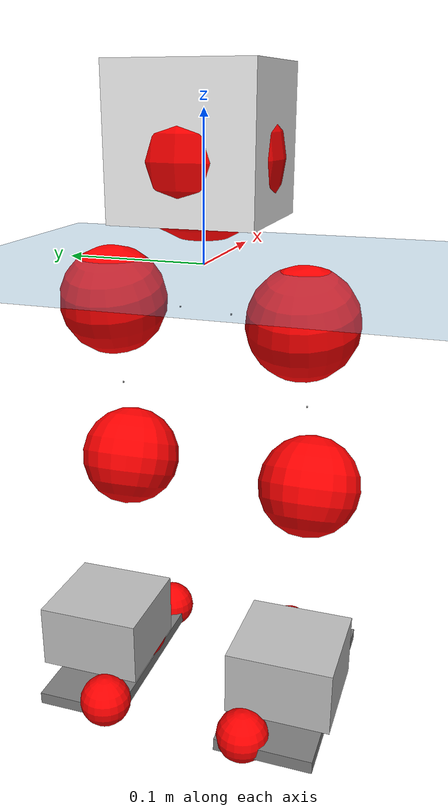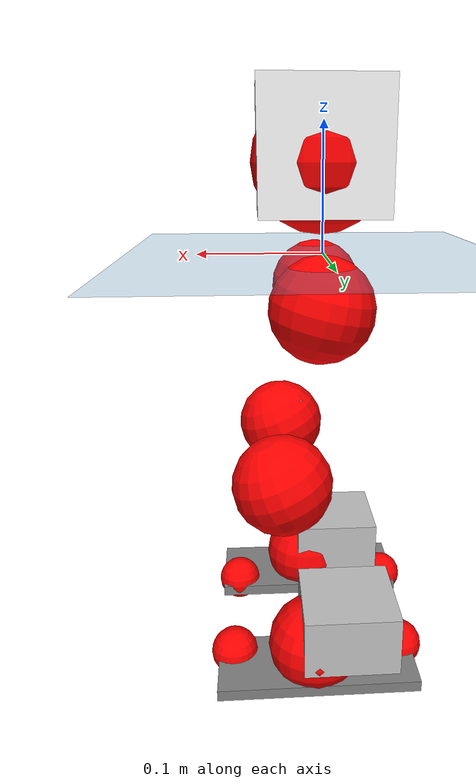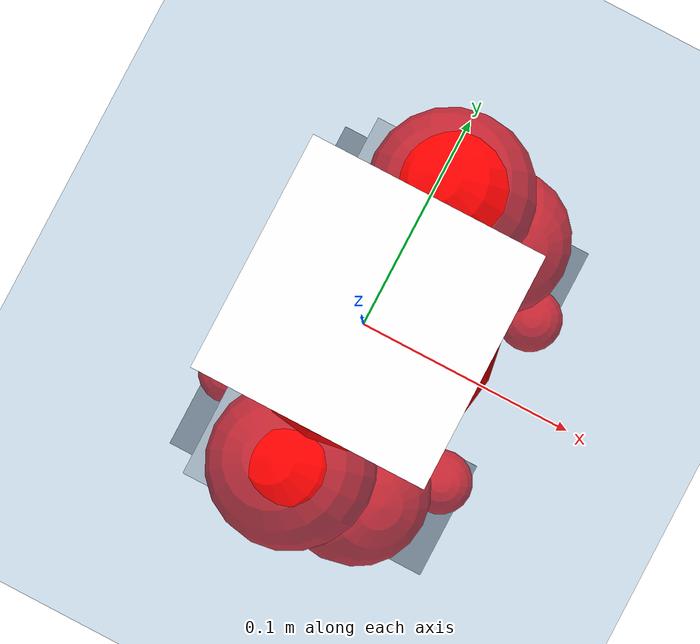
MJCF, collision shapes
<mujoco model="pi_12dof_release_v1">
  <compiler angle="radian" assetdir="assets" balanceinertia="true" inertiafromgeom="false"/>

  <option timestep="0.005" density="1.2" viscosity="2e-05"/>

  <size nkey="1"/>

  <visual>
    <quality shadowsize="8192"/>
    <map shadowclip="0.5"/>
  </visual>

  <default>
    <default class="/">
      <joint armature="0.01" damping="0.01" frictionloss="0.01"/>
      <geom contype="0" conaffinity="0" group="1" solref="-1000 -80"/>
      <site size="0.01 0.005 0.005" group="5"/>
      <general forcelimited="true" biastype="affine" gainprm="20" biasprm="0 -20 -0.5"/>
      <default class="foot">
        <geom size="0.0845 0.036 0.005" type="box" condim="6" group="4" priority="1" friction="0.9 0.2 0.2" solimp="0.015 1 0.005"/>
      </default>
      <default class="reward_collision_sphere">
        <geom group="5" rgba="1 0 0 1"/>
      </default>
    </default>
  </default>

  <asset>
    <texture type="skybox" colorspace="auto" name="//unnamed_texture_0" builtin="gradient" rgb1="0.95 0.95 0.95" rgb2="0.95 0.95 0.95" width="100" height="600"/>
    <texture type="2d" colorspace="auto" name="texplane" builtin="checker" rgb1="0.345 0.575 0.748" rgb2="0.345 0.575 0.748" markrgb="1 1 1" width="512" height="512"/>
    <material name="MatPlane" class="/" texture="texplane" texuniform="true" texrepeat="2 2" specular="0.9"/>
    <mesh name="baselink_1" class="/" file="baselink_1.STL"/>
    <mesh name="r_hip_pitch_link" class="/" file="r_hip_pitch_link.STL"/>
    <mesh name="r_hip_roll_link" class="/" file="r_hip_roll_link.STL"/>
    <mesh name="r_thigh_link" class="/" file="r_thigh_link.STL"/>
    <mesh name="r_calf_link" class="/" file="r_calf_link.STL"/>
    <mesh name="r_ankle_pitch_link" class="/" file="r_ankle_pitch_link.STL"/>
    <mesh name="r_ankle_roll_link" class="/" file="r_ankle_roll_link.STL"/>
    <mesh name="l_hip_pitch_link" class="/" file="l_hip_pitch_link.STL"/>
    <mesh name="l_hip_roll_link" class="/" file="l_hip_roll_link.STL"/>
    <mesh name="l_thigh_link" class="/" file="l_thigh_link.STL"/>
    <mesh name="l_calf_link" class="/" file="l_calf_link.STL"/>
    <mesh name="l_ankle_pitch_link" class="/" file="l_ankle_pitch_link.STL"/>
    <mesh name="l_ankle_roll_link" class="/" file="l_ankle_roll_link.STL"/>
  </asset>

  <worldbody>
    <geom name="floor" class="/" size="100 100 0.125" type="plane" group="0" material="MatPlane"/>
    <light name="toplight_shadow" class="/" pos="0 0 5" dir="0.0990148 0.0990148 -0.990148" type="directional" ambient="0.04 0.04 0.04" diffuse="0.55 0.55 0.55" specular="0.12 0.12 0.12"/>
    <light name="toplight_fill" class="/" pos="0 0 5" dir="0.0990148 0.0990148 -0.990148" type="directional" castshadow="false" ambient="0.04 0.04 0.04" diffuse="0.3 0.3 0.3" specular="0.08 0.08 0.08"/>
    <body name="trunk" pos="0.00259581 0.00109327 0.000659056" quat="1 -9.45555e-05 -8.84679e-05 -0.000153908">
      <inertial pos="0.00218941 1.93113e-05 0.0394295" quat="0.692818 0.0184876 0.00416689 0.720864" mass="2.06064" diaginertia="0.013537 0.00604192 0.0037359"/>
      <joint name="//unnamed_joint_0" type="free"/>
      <geom name="//unnamed_geom_1" class="/" type="mesh" density="0" rgba="1 1 1 1" mesh="baselink_1"/>
      <geom name="//unnamed_geom_2" class="/" size="0.0490738 0.0490738 0.0490738" pos="0 0 0.078341" type="box" rgba="1 1 1 1"/>
      <geom name="//unnamed_geom_3" class="reward_collision_sphere" size="0.0539812" pos="0 0 0.0685483"/>
      <site name="imu" class="/" pos="-0.000394474 0.00533058 -0.0106117" size="0.00981477"/>
      <camera name="track" class="/" pos="0 -1.82408 0" quat="0.707107 0.707107 0 0" mode="trackcom"/>
      <camera name="ego_camera" class="/" pos="0.0789847 0 0.176267" quat="-0.5 -0.5 0.5 0.5"/>
      <body name="r_hip_pitch_link" pos="-0.00059301 -0.0200894 -0.0344205" quat="0.99213 0.000188144 -0.125207 0.00120645">
        <inertial pos="-0.00125294 -0.053245 0.000333893" quat="-0.0178675 0.705948 -0.02796 0.707486" mass="0.352452" diaginertia="0.000141798 5.96862e-05 7.57536e-05"/>
        <joint name="r_hip_pitch_joint" class="/" pos="0 0 0" axis="-0.0124855 -0.999922 -0.000375473" stiffness="0.00110019" range="-1.7037 1.30262" armature="0.00981907" damping="0.0223797" frictionloss="0.00991939"/>
        <geom name="//unnamed_geom_4" class="/" type="mesh" density="0" rgba="0.75294 0.75294 0.75294 1" mesh="r_hip_pitch_link"/>
        <geom name="//unnamed_geom_5" class="/" size="0.000490738 0.000490738 0.000490738" type="box" rgba="0.75294 0.75294 0.75294 1"/>
        <body name="r_hip_roll_link" pos="-0.00286029 -0.0514298 -0.00123402" quat="1 0.000848545 -0.000443449 -0.000209594">
          <inertial pos="-0.000953503 -0.000505163 -0.0615757" quat="0.710387 -0.0726777 -0.0823558 0.695188" mass="0.363284" diaginertia="0.000430967 0.000174329 0.000114393"/>
          <joint name="r_hip_roll_joint" class="/" pos="0 0 0" axis="-0.999894 -0.0096063 0.0109509" range="-0.143338 0.550936" armature="0.0103964" damping="0" frictionloss="0.00844031"/>
          <geom name="//unnamed_geom_6" class="/" type="mesh" density="0" rgba="0.75294 0.75294 0.75294 1" mesh="r_hip_roll_link"/>
          <geom name="//unnamed_geom_7" class="/" size="0.000490738 0.000490738 0.000490738" type="box" rgba="0.75294 0.75294 0.75294 1"/>
          <geom name="//unnamed_geom_8" class="reward_collision_sphere" size="0.0392591"/>
          <body name="r_thigh_link" pos="0.000225034 -0.00164355 -0.0668513" quat="0.999999 -0.00116187 0.000343925 -0.000366732">
            <inertial pos="0.00222995 0.000868124 -0.0463406" quat="0.740637 0.671822 -0.00318299 0.0101027" mass="0.113305" diaginertia="0.000161009 6.1742e-05 5.19276e-05"/>
            <joint name="r_thigh_joint" class="/" pos="0 0 0" axis="0.00497578 -0.0143166 -0.999885" range="-0.24642 0.639012" armature="0.00992744" damping="0.000370209" frictionloss="0.00897835"/>
            <geom name="//unnamed_geom_9" class="/" type="mesh" density="0" rgba="0.75294 0.75294 0.75294 1" mesh="r_thigh_link"/>
            <geom name="//unnamed_geom_10" class="/" size="0.000490738 0.000490738 0.000490738" type="box" rgba="0.75294 0.75294 0.75294 1"/>
            <body name="r_calf_link" pos="-0.00186701 -0.00119761 -0.0711272" quat="0.947797 0.000141502 0.318875 -2.94064e-05">
              <inertial pos="0.00182651 -0.000337821 -0.0706834" quat="0.999848 -0.002048 0.001389 0.0172548" mass="0.780279" diaginertia="0.00471428 0.00219392 0.000161211"/>
              <joint name="r_calf_joint" class="/" pos="0 0 0" axis="-0.0030054 -0.999988 0.00379767" range="-1.63333 0.645382" armature="0.0107428" damping="0.0107509" frictionloss="0.0103043"/>
              <geom name="//unnamed_geom_11" class="/" type="mesh" density="0" rgba="0.75294 0.75294 0.75294 1" mesh="r_calf_link"/>
              <geom name="//unnamed_geom_12" class="/" size="0.000490738 0.000490738 0.000490738" type="box" rgba="0.75294 0.75294 0.75294 1"/>
              <geom name="//unnamed_geom_13" class="reward_collision_sphere" size="0.0392591"/>
              <body name="r_ankle_pitch_link" pos="-0.000458116 -0.00199991 -0.134942" quat="0.980067 2.9876e-06 -0.198668 -3.1333e-05">
                <inertial pos="0.00298501 0.00472256 -0.000658821" quat="0.00329514 0.706337 -0.00239192 0.707864" mass="0.167152" diaginertia="0.000403183 0.000139093 0.000108589"/>
                <joint name="r_ankle_pitch_joint" class="/" pos="0 0 0" axis="-0.0132561 -0.999885 0.00740591" stiffness="0.00771204" range="-1.27071 0.502802" armature="0.00859948" damping="0.016354" frictionloss="0.0084444"/>
                <geom name="//unnamed_geom_14" class="/" type="mesh" density="0" rgba="0.75294 0.75294 0.75294 1" mesh="r_ankle_pitch_link"/>
                <geom name="//unnamed_geom_15" class="/" size="0.0382776 0.0392591 0.0245369" type="box" rgba="0.75294 0.75294 0.75294 1"/>
                <body name="r_ankle_roll_link" pos="0.0806296 0.0048022 0.00264029" quat="1 -0.000164944 0.000429125 -0.000881529">
                  <inertial pos="-0.0235909 -0.00238017 -0.011506" quat="0.563595 0.429961 0.433165 0.556653" mass="0.479599" diaginertia="0.0015226 0.00068164 0.000264761"/>
                  <joint name="r_ankle_roll_joint" class="/" pos="0 0 0" axis="-0.999958 0.00744321 0.00528988" range="-0.149032 0.172342" armature="0.0096824" damping="0.0181146" frictionloss="0.010319"/>
                  <geom name="//unnamed_geom_16" class="/" type="mesh" density="0" rgba="0.75294 0.75294 0.75294 1" mesh="r_ankle_roll_link"/>
                  <geom name="//unnamed_geom_17" class="/" type="mesh" rgba="0.75294 0.75294 0.75294 1" mesh="r_ankle_roll_link"/>
                  <geom name="right_foot" class="foot" size="0.0846773 0.0366537 0.00485421" pos="-0.0537096 0 -0.0430875"/>
                  <geom name="//unnamed_geom_19" class="reward_collision_sphere" size="0.0392591" pos="-0.0526565 0 -0.0195852"/>
                  <geom name="//unnamed_geom_20" class="reward_collision_sphere" size="0.0196295" pos="0.0157969 0.0182408 -0.0391705"/>
                  <geom name="//unnamed_geom_21" class="reward_collision_sphere" size="0.0196295" pos="-0.126376 0.0182408 -0.0391705"/>
                  <site name="right_foot" class="foot" pos="-0.0537096 0 -0.0430875" size="0.00981477"/>
                </body>
              </body>
            </body>
          </body>
        </body>
      </body>
      <body name="l_hip_pitch_link" pos="0.000921477 0.017807 -0.0320987" quat="0.992176 -0.000149445 -0.124848 -0.0002592">
        <inertial pos="0.00317971 0.0477421 -0.000247979" quat="-0.0294871 0.699699 0.034622 0.712989" mass="0.358881" diaginertia="0.000166114 6.58855e-05 8.73657e-05"/>
        <joint name="l_hip_pitch_joint" class="/" pos="0 0 0" axis="-0.00491249 0.999988 0.000202826" range="-1.2957 1.72989" armature="0.00880104" damping="0.00728866" frictionloss="0.0107376"/>
        <geom name="//unnamed_geom_22" class="/" type="mesh" density="0" rgba="0.75294 0.75294 0.75294 1" mesh="l_hip_pitch_link"/>
        <geom name="//unnamed_geom_23" class="/" size="0.000490738 0.000490738 0.000490738" type="box" rgba="0.75294 0.75294 0.75294 1"/>
        <body name="l_hip_roll_link" pos="0.00324943 0.052686 -0.000374554" quat="1 -0.000460251 0.000497948 0.000109855">
          <inertial pos="-0.000991961 0.00206834 -0.0600709" quat="0.698339 -0.073419 -0.0642149 0.70909" mass="0.377016" diaginertia="0.000431566 0.000180216 0.00011715"/>
          <joint name="l_hip_roll_joint" class="/" pos="0 0 0" axis="-0.999967 0.000486216 -0.00811641" range="-0.478028 0.147522" armature="0.0112928" damping="0" frictionloss="0.00865512"/>
          <geom name="//unnamed_geom_24" class="/" type="mesh" density="0" rgba="0.75294 0.75294 0.75294 1" mesh="l_hip_roll_link"/>
          <geom name="//unnamed_geom_25" class="/" size="0.000490738 0.000490738 0.000490738" type="box" rgba="0.75294 0.75294 0.75294 1"/>
          <geom name="//unnamed_geom_26" class="reward_collision_sphere" size="0.0392591"/>
          <body name="l_thigh_link" pos="-0.00177588 0.00208671 -0.0695752" quat="1 -0.000701473 0.000134205 0.0005435">
            <inertial pos="-0.00070937 -0.00134177 -0.0451074" quat="0.681535 0.731751 0.00640755 -0.00327466" mass="0.103747" diaginertia="0.000162062 5.88033e-05 5.2592e-05"/>
            <joint name="l_thigh_joint" class="/" pos="0 0 0" axis="1.3383e-05 -0.000290208 -1" range="-0.64647 0.322502" armature="0.0101484" damping="0" frictionloss="0.00936382"/>
            <geom name="//unnamed_geom_27" class="/" type="mesh" density="0" rgba="0.75294 0.75294 0.75294 1" mesh="l_thigh_link"/>
            <geom name="//unnamed_geom_28" class="/" size="0.000490738 0.000490738 0.000490738" type="box" rgba="0.75294 0.75294 0.75294 1"/>
            <body name="l_calf_link" pos="-0.00253384 0.00258571 -0.0689777" quat="0.947617 6.7019e-05 0.319409 -0.000229885">
              <inertial pos="0.00325092 0.00479265 -0.0696006" quat="0.999898 -0.000289701 0.00663673 0.0126351" mass="0.780093" diaginertia="0.00474961 0.00230765 0.000164061"/>
              <joint name="l_calf_joint" class="/" pos="0 0 0" axis="-0.0083126 0.999921 -0.00946186" range="-0.59444 1.67464" armature="0.00973548" damping="0.00299302" frictionloss="0.00845597"/>
              <geom name="//unnamed_geom_29" class="/" type="mesh" density="0" rgba="0.75294 0.75294 0.75294 1" mesh="l_calf_link"/>
              <geom name="//unnamed_geom_30" class="/" size="0.000490738 0.000490738 0.000490738" type="box" rgba="0.75294 0.75294 0.75294 1"/>
              <geom name="//unnamed_geom_31" class="reward_collision_sphere" size="0.0392591"/>
              <body name="l_ankle_pitch_link" pos="8.38754e-05 0.00131148 -0.135074" quat="0.980164 -6.22767e-05 -0.198188 0.000104707">
                <inertial pos="0.00533718 -0.000148169 -0.00020065" quat="-0.00301727 0.705708 -0.00601328 0.708471" mass="0.168245" diaginertia="0.000401736 0.000145813 0.000110839"/>
                <joint name="l_ankle_pitch_joint" class="/" pos="0 0 0" axis="0.00230997 0.999991 -0.00350982" range="-0.453476 1.35636" armature="0.009806" damping="0" frictionloss="0.00940642"/>
                <geom name="//unnamed_geom_32" class="/" type="mesh" density="0" rgba="0.75294 0.75294 0.75294 1" mesh="l_ankle_pitch_link"/>
                <geom name="//unnamed_geom_33" class="/" size="0.0382776 0.0392591 0.0245369" type="box" rgba="0.75294 0.75294 0.75294 1"/>
                <body name="l_ankle_roll_link" pos="0.078946 0.000570917 -0.000223069" quat="1 0.000240631 -8.92578e-05 3.03621e-05">
                  <inertial pos="-0.0281358 -0.00185671 -0.0119163" quat="0.560534 0.431493 0.432058 0.559411" mass="0.51321" diaginertia="0.00143299 0.000680699 0.000257163"/>
                  <joint name="l_ankle_roll_joint" class="/" pos="0 0 0" axis="-0.999999 -0.00116051 0.000676677" stiffness="0.0095264" range="-0.164532 0.101576" armature="0.00926854" damping="0.0196539" frictionloss="0.0111136"/>
                  <geom name="//unnamed_geom_34" class="/" type="mesh" density="0" rgba="0.75294 0.75294 0.75294 1" mesh="l_ankle_roll_link"/>
                  <geom name="//unnamed_geom_35" class="/" type="mesh" rgba="0.75294 0.75294 0.75294 1" mesh="l_ankle_roll_link"/>
                  <geom name="left_foot" class="foot" size="0.0824803 0.0329032 0.00463388" pos="-0.0537096 0 -0.0430875"/>
                  <geom name="//unnamed_geom_37" class="reward_collision_sphere" size="0.0392591" pos="-0.0526565 0 -0.0195852"/>
                  <geom name="//unnamed_geom_38" class="reward_collision_sphere" size="0.0196295" pos="0.0157969 -0.0182408 -0.0391705"/>
                  <geom name="//unnamed_geom_39" class="reward_collision_sphere" size="0.0196295" pos="-0.126376 -0.0182408 -0.0391705"/>
                  <site name="left_foot" class="foot" pos="-0.0537096 0 -0.0430875" size="0.00981477"/>
                </body>
              </body>
            </body>
          </body>
        </body>
      </body>
    </body>
  </worldbody>

  <contact>
    <pair class="/" geom1="floor" geom2="right_foot" name="//unnamed_contact_1"/>
    <pair class="/" geom1="floor" geom2="left_foot" name="//unnamed_contact_0"/>
  </contact>

  <actuator>
    <general name="r_hip_pitch_joint" class="/" joint="r_hip_pitch_joint" forcerange="-21.8921 21.8921" gainprm="19.2302" biasprm="0 -19.2302 -0.502836"/>
    <general name="r_hip_roll_joint" class="/" joint="r_hip_roll_joint" forcerange="-22.5496 22.5496" gainprm="19.2302" biasprm="0 -19.2302 -0.502836"/>
    <general name="r_thigh_joint" class="/" joint="r_thigh_joint" forcerange="-19.8763 19.8763" gainprm="19.2302" biasprm="0 -19.2302 -0.502836"/>
    <general name="r_calf_joint" class="/" joint="r_calf_joint" forcerange="-22.1697 22.1697" gainprm="19.2302" biasprm="0 -19.2302 -0.502836"/>
    <general name="r_ankle_pitch_joint" class="/" joint="r_ankle_pitch_joint" forcerange="-20.6991 20.6991" gainprm="19.2302" biasprm="0 -19.2302 -0.502836"/>
    <general name="r_ankle_roll_joint" class="/" joint="r_ankle_roll_joint" forcerange="-20.7216 20.7216" gainprm="19.2302" biasprm="0 -19.2302 -0.502836"/>
    <general name="l_hip_pitch_joint" class="/" joint="l_hip_pitch_joint" forcerange="-20.7903 20.7903" gainprm="19.2302" biasprm="0 -19.2302 -0.502836"/>
    <general name="l_hip_roll_joint" class="/" joint="l_hip_roll_joint" forcerange="-18.4924 18.4924" gainprm="19.2302" biasprm="0 -19.2302 -0.502836"/>
    <general name="l_thigh_joint" class="/" joint="l_thigh_joint" forcerange="-21.7075 21.7075" gainprm="19.2302" biasprm="0 -19.2302 -0.502836"/>
    <general name="l_calf_joint" class="/" joint="l_calf_joint" forcerange="-20.6732 20.6732" gainprm="19.2302" biasprm="0 -19.2302 -0.502836"/>
    <general name="l_ankle_pitch_joint" class="/" joint="l_ankle_pitch_joint" forcerange="-19.7989 19.7989" gainprm="19.2302" biasprm="0 -19.2302 -0.502836"/>
    <general name="l_ankle_roll_joint" class="/" joint="l_ankle_roll_joint" forcerange="-22.492 22.492" gainprm="19.2302" biasprm="0 -19.2302 -0.502836"/>
  </actuator>

  <sensor>
    <gyro site="imu" name="imu_angular_velocity"/>
    <velocimeter site="imu" name="imu_linear_velocity"/>
    <framelinvel objtype="site" objname="left_foot" name="left_foot_global_linear_velocity"/>
    <framelinvel objtype="site" objname="right_foot" name="right_foot_global_linear_velocity"/>
  </sensor>

  <keyframe>
    <key name="home" qpos="0 0 0.291 1 0 0 0 0.4 0 0 -0.8 0.4 0 -0.4 0 0 0.8 -0.4 0"/>
  </keyframe>
</mujoco>
